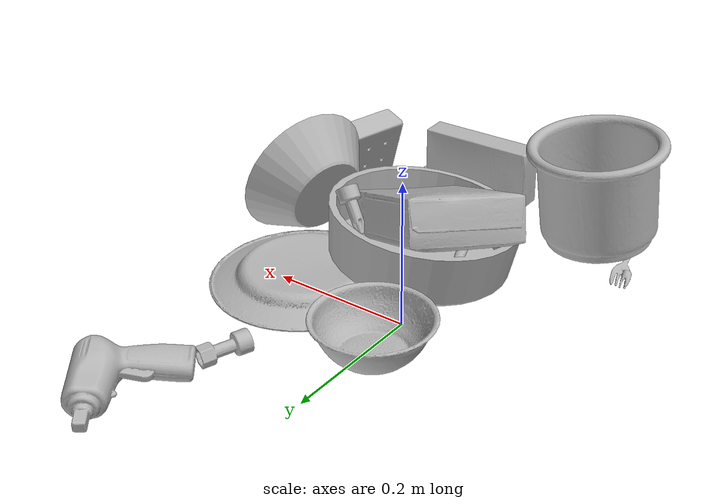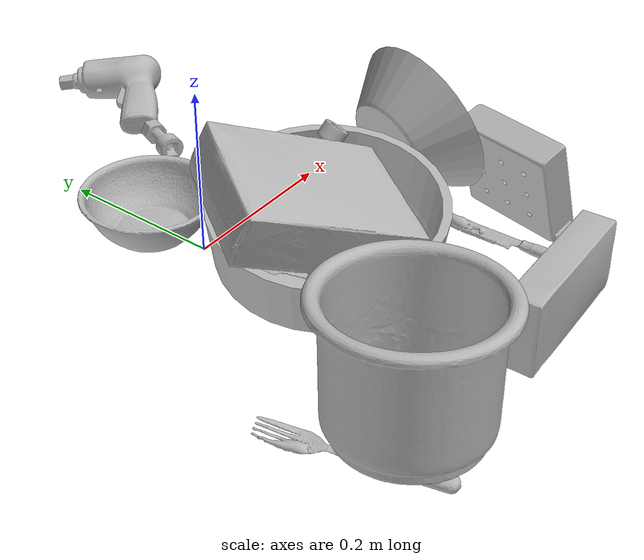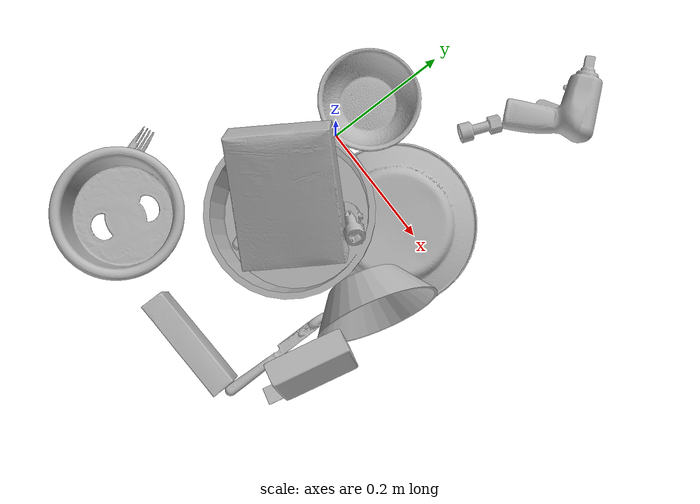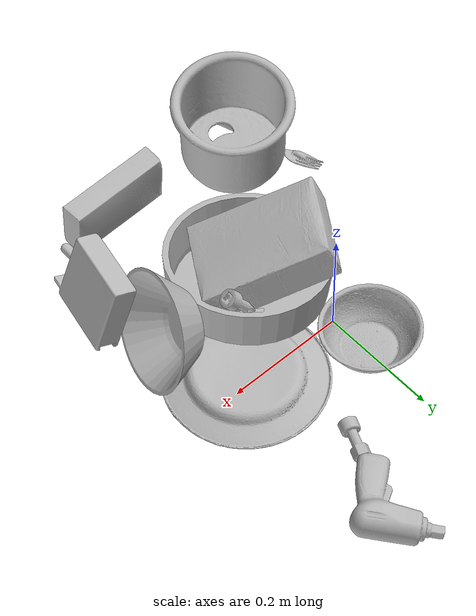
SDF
<sdf version="1.4">
  <world name="default">
    <light name="light1" type="point">
      <pose>0 0 1 0 0 0</pose>
      <diffuse>3 3 3 1</diffuse>
      <specular>3 3 3 1</specular>
    </light>
    <light name="light2" type="point">
      <pose>0 0.5 2 0 0 0</pose>
      <diffuse>1 1 1 1</diffuse>
      <specular>1 1 1 1</specular>
    </light>
    <light name="light3" type="point">
      <pose>0 0.5 2 0 0 0</pose>
      <diffuse>3 3 3 1</diffuse>
      <specular>3 3 3 1</specular>
    </light>
    <scene>
      <ambient>0.7 0.7 0.7</ambient>
    </scene>
    <model name="plate1">
      <link name="link_plate1">
        <collision name="default">
          <geometry>
            <mesh>
              <uri>model://plate/collision_meshes/collision.obj</uri>
              <scale>1.0 1.0 1.0</scale>
            </mesh>
          </geometry>
          <surface>
            <friction>
              <ode>
                <mu>0.5</mu>
                <mu2>0.5</mu2>
              </ode>
            </friction>
          <contact>
        <ode>
            <max_vel>0</max_vel>
            <min_depth>0.0001</min_depth>
            <kp>1e8</kp>
        </ode>
    </contact></surface>
        </collision>
        <visual name="default">
          <geometry>
            <mesh>
              <uri>model://plate/visual_meshes/visual.dae</uri>
              <scale>1.0 1.0 1.0</scale>
            </mesh>
          </geometry>
        </visual>
        <inertial>
          <mass>0.11001742631196976</mass>
          <pose>-0.0006044686888344586 0.000278257648460567 -0.0010561998933553696 0.00221878912528286 -0.0032254756485070152 0.4526088917028743</pose>
          <inertia>
            <ixx>0.00051466376</ixx>
            <iyy>0.0005097412</iyy>
            <izz>0.0010066056</izz>
            <ixy>0</ixy>
            <ixz>0</ixz>
            <iyz>0</iyz>
          </inertia>
        </inertial>
      </link>
      <pose>0.1695995330810547 -0.012114999815821648 0.01339150220155716 3.1406512426632562 -0.004193530073920391 -2.574464118233171</pose>
    </model>
    <model name="plate2">
      <link name="link_plate2">
        <collision name="default">
          <geometry>
            <mesh>
              <uri>model://pan_tefal/collision_meshes/collision.obj</uri>
              <scale>1.0 1.0 1.0</scale>
            </mesh>
          </geometry>
          <surface>
            <friction>
              <ode>
                <mu>0.5</mu>
                <mu2>0.5</mu2>
              </ode>
            </friction>
          <contact>
        <ode>
            <max_vel>0</max_vel>
            <min_depth>0.0001</min_depth>
            <kp>1e8</kp>
        </ode>
    </contact></surface>
        </collision>
        <visual name="default">
          <geometry>
            <mesh>
              <uri>model://pan_tefal/visual_meshes/visual.dae</uri>
              <scale>1.0 1.0 1.0</scale>
            </mesh>
          </geometry>
        </visual>
        <inertial>
          <mass>1.457576870918274</mass>
          <pose>-0.00018002426077146083 3.279360316810198e-05 -0.008514936082065105 0.0008190306735146073 -0.00033013365411173643 -0.33185917339097665</pose>
          <inertia>
            <ixx>0.010061583</ixx>
            <iyy>0.01012645</iyy>
            <izz>0.01852144</izz>
            <ixy>0</ixy>
            <ixz>0</ixz>
            <iyz>0</iyz>
          </inertia>
        </inertial>
      </link>
      <pose>0.05849198251962662 -0.12981656193733215 0.054053887724876404 -0.13194653622631278 0.03232758616726233 2.4427071348666494</pose>
    </model>
    <model name="bowl1">
      <link name="link_bowl1">
        <collision name="default">
          <geometry>
            <mesh>
              <uri>model://bowl_a/collision_meshes/collision.obj</uri>
              <scale>1.0 1.0 1.0</scale>
            </mesh>
          </geometry>
          <surface>
            <friction>
              <ode>
                <mu>0.5</mu>
                <mu2>0.5</mu2>
              </ode>
            </friction>
          <contact>
        <ode>
            <max_vel>0</max_vel>
            <min_depth>0.0001</min_depth>
            <kp>1e8</kp>
        </ode>
    </contact></surface>
        </collision>
        <visual name="default">
          <geometry>
            <mesh>
              <uri>model://bowl_a/visual_meshes/visual.dae</uri>
              <scale>1.0 1.0 1.0</scale>
            </mesh>
          </geometry>
        </visual>
        <inertial>
          <mass>0.29746556282043457</mass>
          <pose>0.0002786756958812475 4.7311452362919226e-05 -0.0013765294570475817 -0.0009805438325310402 -0.001093816410149737 -0.19123071729823712</pose>
          <inertia>
            <ixx>0.0008468981</ixx>
            <iyy>0.00085209764</iyy>
            <izz>0.0015062407</izz>
            <ixy>0</ixy>
            <ixz>0</ixz>
            <iyz>0</iyz>
          </inertia>
        </inertial>
      </link>
      <pose>0.23377400636672974 -0.11533066630363464 0.08564730733633041 1.2241133580338663 0.547654862913807 1.1191476175215478</pose>
    </model>
    <model name="bowl2">
      <link name="link_bowl2">
        <collision name="default">
          <geometry>
            <mesh>
              <uri>model://bowl/collision_meshes/collision.obj</uri>
              <scale>1.0 1.0 1.0</scale>
            </mesh>
          </geometry>
          <surface>
            <friction>
              <ode>
                <mu>0.5</mu>
                <mu2>0.5</mu2>
              </ode>
            </friction>
          <contact>
        <ode>
            <max_vel>0</max_vel>
            <min_depth>0.0001</min_depth>
            <kp>1e8</kp>
        </ode>
    </contact></surface>
        </collision>
        <visual name="default">
          <geometry>
            <mesh>
              <uri>model://bowl/visual_meshes/visual.dae</uri>
              <scale>1.0 1.0 1.0</scale>
            </mesh>
          </geometry>
        </visual>
        <inertial>
          <mass>0.12348172068595886</mass>
          <pose>0.0002044529828708619 -0.0010302055161446333 -0.0008042656118050218 -0.01576411854188812 0.014546757923928972 0.7140383762832406</pose>
          <inertia>
            <ixx>0.0002836472</ixx>
            <iyy>0.00027730947</iyy>
            <izz>0.00047719217</izz>
            <ixy>0</ixy>
            <ixz>0</ixz>
            <iyz>0</iyz>
          </inertia>
        </inertial>
      </link>
      <pose>-0.008553087711334229 0.0721457228064537 0.027779992669820786 7.93905480245272e-09 2.8038772054875437e-08 -0.2180683184770034</pose>
    </model>
    <model name="silverware1">
      <link name="link_silverware1">
        <collision name="default">
          <geometry>
            <mesh>
              <uri>model://spoon/collision_meshes/collision.obj</uri>
              <scale>1.0 1.0 1.0</scale>
            </mesh>
          </geometry>
          <surface>
            <friction>
              <ode>
                <mu>0.5</mu>
                <mu2>0.5</mu2>
              </ode>
            </friction>
          <contact>
        <ode>
            <max_vel>0</max_vel>
            <min_depth>0.0001</min_depth>
            <kp>1e8</kp>
        </ode>
    </contact></surface>
        </collision>
        <visual name="default">
          <geometry>
            <mesh>
              <uri>model://spoon/visual_meshes/visual.dae</uri>
              <scale>1.0 1.0 1.0</scale>
            </mesh>
          </geometry>
        </visual>
        <inertial>
          <mass>0.03284037858247757</mass>
          <pose>-0.005526319611817598 -0.001603417214937508 -0.000727165665011853 0.03521671059584429 -0.039065856285187314 0.0061506144474233635</pose>
          <inertia>
            <ixx>1.8266356e-06</ixx>
            <iyy>0.00012495652</iyy>
            <izz>0.00012585736</izz>
            <ixy>0</ixy>
            <ixz>0</ixz>
            <iyz>0</iyz>
          </inertia>
        </inertial>
      </link>
      <pose>0.00785798579454422 -0.1442638337612152 0.02561783790588379 0.027177429381126345 -0.02625539285798788 1.9414347178088178</pose>
    </model>
    <model name="box1">
      <link name="link_box1">
        <collision name="default">
          <geometry>
            <mesh>
              <uri>model://cracker_box/collision_meshes/collision.obj</uri>
              <scale>1.0 1.0 1.0</scale>
            </mesh>
          </geometry>
          <surface>
            <friction>
              <ode>
                <mu>0.5</mu>
                <mu2>0.5</mu2>
              </ode>
            </friction>
          <contact>
        <ode>
            <max_vel>0</max_vel>
            <min_depth>0.0001</min_depth>
            <kp>1e8</kp>
        </ode>
    </contact></surface>
        </collision>
        <visual name="default">
          <geometry>
            <mesh>
              <uri>model://cracker_box/visual_meshes/visual.dae</uri>
              <scale>1.0 1.0 1.0</scale>
            </mesh>
          </geometry>
        </visual>
        <inertial>
          <mass>2.434305191040039</mass>
          <pose>0.0009464126778766513 0.0002543424488976598 -0.0017029534792527556 -0.0003162073658586955 -0.011106488669321329 0.0025467952332158075</pose>
          <inertia>
            <ixx>0.0061917845</ixx>
            <iyy>0.010223853</iyy>
            <izz>0.014590379</izz>
            <ixy>0</ixy>
            <ixz>0</ixz>
            <iyz>0</iyz>
          </inertia>
        </inertial>
      </link>
      <pose>0.03302914276719093 -0.11895882338285446 0.0940360277891159 2.997991226580339 -0.3858155404286668 2.616913682888818</pose>
    </model>
    <model name="box2">
      <link name="link_box2">
        <collision name="default">
          <geometry>
            <mesh>
              <uri>model://sugar_box/collision_meshes/collision.obj</uri>
              <scale>1.0 1.0 1.0</scale>
            </mesh>
          </geometry>
          <surface>
            <friction>
              <ode>
                <mu>0.5</mu>
                <mu2>0.5</mu2>
              </ode>
            </friction>
          <contact>
        <ode>
            <max_vel>0</max_vel>
            <min_depth>0.0001</min_depth>
            <kp>1e8</kp>
        </ode>
    </contact></surface>
        </collision>
        <visual name="default">
          <geometry>
            <mesh>
              <uri>model://sugar_box/visual_meshes/visual.dae</uri>
              <scale>1.0 1.0 1.0</scale>
            </mesh>
          </geometry>
        </visual>
        <inertial>
          <mass>0.5700510144233704</mass>
          <pose>0.0010343727190047503 3.849109634757042e-05 -0.00036364805418998003 -0.00040462615490547663 0.0010506634056045778 0.0026153790218534064</pose>
          <inertia>
            <ixx>0.00047496508</ixx>
            <iyy>0.0015351841</iyy>
            <izz>0.0018377992</izz>
            <ixy>0</ixy>
            <ixz>0</ixz>
            <iyz>0</iyz>
          </inertia>
        </inertial>
      </link>
      <pose>0.11868930608034134 -0.3764255940914154 0.0463518425822258 -1.5917631881481091 -0.009311798373229936 0.026411244863608827</pose>
    </model>
    <model name="cup1">
      <link name="link_cup1">
        <collision name="default">
          <geometry>
            <mesh>
              <uri>model://i_cups/collision_meshes/collision.obj</uri>
              <scale>2.0 2.0 2.0</scale>
            </mesh>
          </geometry>
          <surface>
            <friction>
              <ode>
                <mu>0.5</mu>
                <mu2>0.5</mu2>
              </ode>
            </friction>
          <contact>
        <ode>
            <max_vel>0</max_vel>
            <min_depth>0.0001</min_depth>
            <kp>1e8</kp>
        </ode>
    </contact></surface>
        </collision>
        <visual name="default">
          <geometry>
            <mesh>
              <uri>model://i_cups/visual_meshes/visual.dae</uri>
              <scale>2.0 2.0 2.0</scale>
            </mesh>
          </geometry>
        </visual>
        <inertial>
          <mass>0.8749163746833801</mass>
          <pose>0.0002248019736725837 0.0003359491820447147 -0.0017158064292743802 -0.028982988446176382 -0.03987323668700188 -0.3459135059395342</pose>
          <inertia>
            <ixx>0.0048453393</ixx>
            <iyy>0.0048880302</iyy>
            <izz>0.0054154512</izz>
            <ixy>0</ixy>
            <ixz>0</ixz>
            <iyz>0</iyz>
          </inertia>
        </inertial>
      </link>
      <pose>-0.09884347766637802 -0.3369259238243103 0.08216355741024017 -0.024415763266872986 -0.1056150516601494 -2.144667497606996</pose>
    </model>
    <model name="silverware2">
      <link name="link_silverware2">
        <collision name="default">
          <geometry>
            <mesh>
              <uri>model://fork/collision_meshes/collision.obj</uri>
              <scale>1.0 1.0 1.0</scale>
            </mesh>
          </geometry>
          <surface>
            <friction>
              <ode>
                <mu>0.5</mu>
                <mu2>0.5</mu2>
              </ode>
            </friction>
          <contact>
        <ode>
            <max_vel>0</max_vel>
            <min_depth>0.0001</min_depth>
            <kp>1e8</kp>
        </ode>
    </contact></surface>
        </collision>
        <visual name="default">
          <geometry>
            <mesh>
              <uri>model://fork/visual_meshes/visual.dae</uri>
              <scale>1.0 1.0 1.0</scale>
            </mesh>
          </geometry>
        </visual>
        <inertial>
          <mass>0.021080315113067627</mass>
          <pose>-0.02957003377377987 0.00046588227269239724 0.0003218860656488687 -0.013550583544297463 -0.010977830979267335 0.014453899239778455</pose>
          <inertia>
            <ixx>7.3898417e-07</ixx>
            <iyy>5.503463e-05</iyy>
            <izz>5.5365177e-05</izz>
            <ixy>0</ixy>
            <ixz>0</ixz>
            <iyz>0</iyz>
          </inertia>
        </inertial>
      </link>
      <pose>-0.1603076010942459 -0.32137686014175415 0.006824570242315531 -0.15215027371251066 0.012356180043602576 1.8448085417785216</pose>
    </model>
    <model name="silverware3">
      <link name="link_silverware3">
        <collision name="default">
          <geometry>
            <mesh>
              <uri>model://knife/collision_meshes/collision.obj</uri>
              <scale>1.0 1.0 1.0</scale>
            </mesh>
          </geometry>
          <surface>
            <friction>
              <ode>
                <mu>0.5</mu>
                <mu2>0.5</mu2>
              </ode>
            </friction>
          <contact>
        <ode>
            <max_vel>0</max_vel>
            <min_depth>0.0001</min_depth>
            <kp>1e8</kp>
        </ode>
    </contact></surface>
        </collision>
        <visual name="default">
          <geometry>
            <mesh>
              <uri>model://knife/visual_meshes/visual.dae</uri>
              <scale>1.0 1.0 1.0</scale>
            </mesh>
          </geometry>
        </visual>
        <inertial>
          <mass>0.03557601198554039</mass>
          <pose>-0.023785259574651718 0.0015275123296305537 5.062016498413868e-05 0.07305791577183936 0.01724842049726123 -0.007409813921982597</pose>
          <inertia>
            <ixx>1.0097915e-06</ixx>
            <iyy>0.00013667726</iyy>
            <izz>0.00013700248</izz>
            <ixy>0</ixy>
            <ixz>0</ixz>
            <iyz>0</iyz>
          </inertia>
        </inertial>
      </link>
      <pose>0.21534030139446259 -0.27925607562065125 0.005810708738863468 2.889354444741911 0.025914641075807945 1.569679285660812</pose>
    </model>
    <model name="toy1">
      <link name="link_toy1">
        <collision name="default">
          <geometry>
            <mesh>
              <uri>model://b_toy_airplane/collision_meshes/collision.obj</uri>
              <scale>1.0 1.0 1.0</scale>
            </mesh>
          </geometry>
          <surface>
            <friction>
              <ode>
                <mu>0.5</mu>
                <mu2>0.5</mu2>
              </ode>
            </friction>
          <contact>
        <ode>
            <max_vel>0</max_vel>
            <min_depth>0.0001</min_depth>
            <kp>1e8</kp>
        </ode>
    </contact></surface>
        </collision>
        <visual name="default">
          <geometry>
            <mesh>
              <uri>model://b_toy_airplane/visual_meshes/visual.dae</uri>
              <scale>1.0 1.0 1.0</scale>
            </mesh>
          </geometry>
        </visual>
        <inertial>
          <mass>0.2131570726633072</mass>
          <pose>0.005081363953649998 0.00401558680459857 0.00954306498169899 -0.040018114912876775 -0.04022188568687408 -0.5601502887595425</pose>
          <inertia>
            <ixx>0.00039573</ixx>
            <iyy>0.00015817716</iyy>
            <izz>0.00049232744</izz>
            <ixy>0</ixy>
            <ixz>0</ixz>
            <iyz>0</iyz>
          </inertia>
        </inertial>
      </link>
      <pose>0.18815919756889343 0.30118057131767273 0.035689108073711395 3.0695709111597145 0.07405952738963785 2.2694331540024315</pose>
    </model>
    <model name="toy2">
      <link name="link_toy2">
        <collision name="default">
          <geometry>
            <mesh>
              <uri>model://nine_hole_peg_test/collision_meshes/collision.obj</uri>
              <scale>1.0 1.0 1.0</scale>
            </mesh>
          </geometry>
          <surface>
            <friction>
              <ode>
                <mu>0.5</mu>
                <mu2>0.5</mu2>
              </ode>
            </friction>
          <contact>
        <ode>
            <max_vel>0</max_vel>
            <min_depth>0.0001</min_depth>
            <kp>1e8</kp>
        </ode>
    </contact></surface>
        </collision>
        <visual name="default">
          <geometry>
            <mesh>
              <uri>model://nine_hole_peg_test/visual_meshes/visual.dae</uri>
              <scale>1.0 1.0 1.0</scale>
            </mesh>
          </geometry>
        </visual>
        <inertial>
          <mass>0.9403080940246582</mass>
          <pose>-0.004617387894541025 -0.009647617116570473 2.646069333422929e-05 -0.0014666798116952742 0.0007194174694617774 -0.6342424398534297</pose>
          <inertia>
            <ixx>0.0014703267</ixx>
            <iyy>0.0013728285</iyy>
            <izz>0.0025764457</izz>
            <ixy>0</ixy>
            <ixz>0</ixz>
            <iyz>0</iyz>
          </inertia>
        </inertial>
      </link>
      <pose>0.2605234384536743 -0.2589068114757538 0.06153102219104767 3.105712461506843 1.2640566509714124 -0.25661698015681145</pose>
    </model>
    <model name="toy3">
      <link name="link_toy3">
        <collision name="default">
          <geometry>
            <mesh>
              <uri>model://a_lego_duplo/collision_meshes/collision.obj</uri>
              <scale>1.0 1.0 1.0</scale>
            </mesh>
          </geometry>
          <surface>
            <friction>
              <ode>
                <mu>0.5</mu>
                <mu2>0.5</mu2>
              </ode>
            </friction>
          <contact>
        <ode>
            <max_vel>0</max_vel>
            <min_depth>0.0001</min_depth>
            <kp>1e8</kp>
        </ode>
    </contact></surface>
        </collision>
        <visual name="default">
          <geometry>
            <mesh>
              <uri>model://a_lego_duplo/visual_meshes/visual.dae</uri>
              <scale>1.0 1.0 1.0</scale>
            </mesh>
          </geometry>
        </visual>
        <inertial>
          <mass>0.023130550980567932</mass>
          <pose>-0.00011337705655023456 0.00018517566786613315 0.00036926098982803524 -0.014116995996849858 -0.00012565876120078728 6.143831699070756e-05</pose>
          <inertia>
            <ixx>2.9655212e-06</ixx>
            <iyy>6.643419e-06</iyy>
            <izz>8.229349e-06</izz>
            <ixy>0</ixy>
            <ixz>0</ixz>
            <iyz>0</iyz>
          </inertia>
        </inertial>
      </link>
      <pose>0.12783139944076538 -0.06189475581049919 0.05267639085650444 1.4425222751569058 0.051094208198410436 2.603707993888949</pose>
    </model>
    <model name="toy4">
      <link name="link_toy4">
        <collision name="default">
          <geometry>
            <mesh>
              <uri>model://c_toy_airplane/collision_meshes/collision.obj</uri>
              <scale>1.0 1.0 1.0</scale>
            </mesh>
          </geometry>
          <surface>
            <friction>
              <ode>
                <mu>0.5</mu>
                <mu2>0.5</mu2>
              </ode>
            </friction>
          <contact>
        <ode>
            <max_vel>0</max_vel>
            <min_depth>0.0001</min_depth>
            <kp>1e8</kp>
        </ode>
    </contact></surface>
        </collision>
        <visual name="default">
          <geometry>
            <mesh>
              <uri>model://c_toy_airplane/visual_meshes/visual.dae</uri>
              <scale>1.0 1.0 1.0</scale>
            </mesh>
          </geometry>
        </visual>
        <inertial>
          <mass>0.016945533454418182</mass>
          <pose>-0.00023024251277092844 -4.426267139479023e-07 -0.006080526392906904 -0.00619248279943298 -0.01679780513617648 0.7654772671109313</pose>
          <inertia>
            <ixx>7.781044e-06</ixx>
            <iyy>7.759084e-06</iyy>
            <izz>1.826835e-06</izz>
            <ixy>0</ixy>
            <ixz>0</ixz>
            <iyz>0</iyz>
          </inertia>
        </inertial>
      </link>
      <pose>0.13077227771282196 0.18618854880332947 0.014615992084145546 1.6417601050515187 0.7666127643697497 2.806935301163484</pose>
    </model>
    <model name="toy5">
      <link name="link_toy5">
        <collision name="default">
          <geometry>
            <mesh>
              <uri>model://d_toy_airplane/collision_meshes/collision.obj</uri>
              <scale>1.0 1.0 1.0</scale>
            </mesh>
          </geometry>
          <surface>
            <friction>
              <ode>
                <mu>0.5</mu>
                <mu2>0.5</mu2>
              </ode>
            </friction>
          <contact>
        <ode>
            <max_vel>0</max_vel>
            <min_depth>0.0001</min_depth>
            <kp>1e8</kp>
        </ode>
    </contact></surface>
        </collision>
        <visual name="default">
          <geometry>
            <mesh>
              <uri>model://d_toy_airplane/visual_meshes/visual.dae</uri>
              <scale>1.0 1.0 1.0</scale>
            </mesh>
          </geometry>
        </visual>
        <inertial>
          <mass>0.01782749593257904</mass>
          <pose>9.410309576196596e-05 -5.809334834339097e-05 -0.011728094890713692 0.00026697885790152897 0.00467897817044427 0.5194648744438854</pose>
          <inertia>
            <ixx>5.3443378e-06</ixx>
            <iyy>5.3483677e-06</iyy>
            <izz>1.6134899e-06</izz>
            <ixy>0</ixy>
            <ixz>0</ixz>
            <iyz>0</iyz>
          </inertia>
        </inertial>
      </link>
      <pose>0.12852725386619568 -0.06900134682655334 0.09447873383760452 2.4600779474316337 0.09878021155718883 -1.8674479808844948</pose>
    </model>
  <physics type="ode">
      <max_contacts>50</max_contacts>
      <ode>
        <solver>
          <type>quick</type>
          <iters>75</iters>
        </solver>
        <constraints>
          <contact_max_correcting_vel>0</contact_max_correcting_vel>
          <contact_surface_layer>0</contact_surface_layer>
        </constraints>
      </ode>
    </physics></world>
</sdf>
